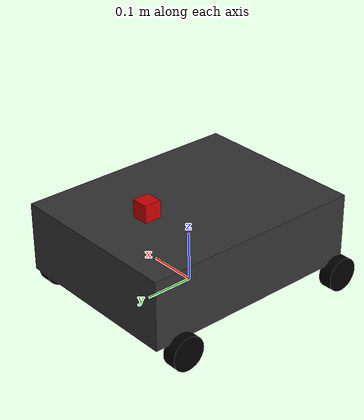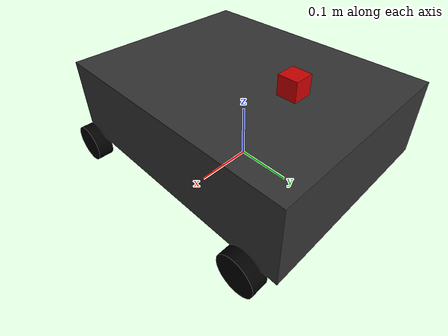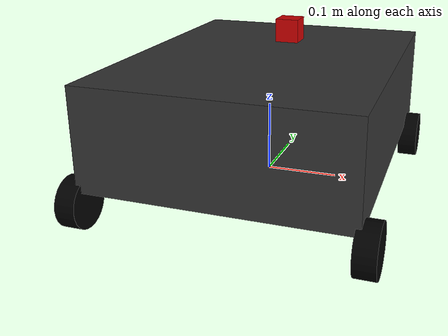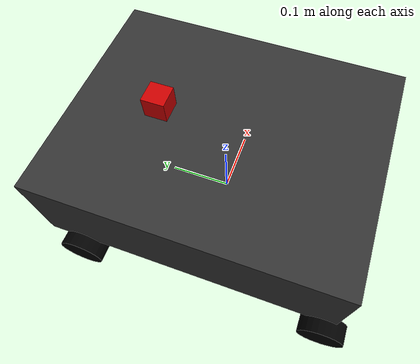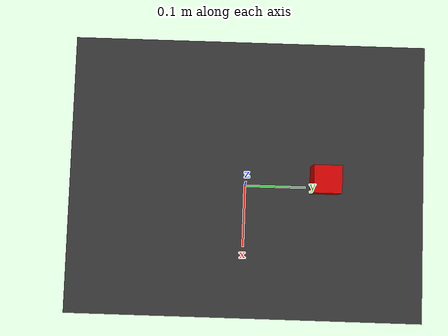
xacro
<?xml version="1.0"?>
<robot xmlns:xacro="http://www.ros.org/wiki/xacro" name="dummybot">

  <!-- Include ros2_control xacro -->
  <xacro:include filename="$(find dummybot_bringup)/description/urdf/dummybot.ros2_control.xacro"/>

  <!-- Properties -->
  <xacro:property name="use_mock_hardware" value="false"/>

  <!-- Robot dimensions -->
  <xacro:property name="wheel_radius" value="0.0345"/>
  <xacro:property name="wheel_width" value="0.028"/>
  <xacro:property name="wheelbase" value="0.374"/>            <!-- Track width (lateral X) -->
  <xacro:property name="wheel_separation" value="0.390"/>     <!-- Wheelbase (longitudinal Y) -->

  <xacro:property name="base_length" value="0.36"/>           <!-- X (scurt) -->
  <xacro:property name="base_width" value="0.46"/>            <!-- Y (lung) -->
  <xacro:property name="base_height" value="0.14"/>

  <!-- Ground clearance: centru roată la 1.45cm + 2cm la bază = 3.45cm -->
  <xacro:property name="ground_clearance" value="0.0345"/>
  <xacro:property name="wheel_z_offset" value="-0.02"/>

  <!-- Poziții roți pe Y (față-spate) -->
  <xacro:property name="front_wheel_y_offset" value="0.175"/>   <!-- Față (pozitiv) ✅ INVERSAT -->
  <xacro:property name="rear_wheel_y_offset" value="-0.215"/>   <!-- Spate (negativ) ✅ INVERSAT -->

  <!-- Serial configuration -->
  <xacro:property name="serial_port" value="/dev/ttyESP32"/>
  <xacro:property name="serial_baud" value="115200"/>
  <xacro:property name="ticks_per_revolution" value="1760"/>

  <!-- Materials -->
  <material name="black">
    <color rgba="0.0 0.0 0.0 1.0"/>
  </material>

  <material name="dark_grey">
    <color rgba="0.2 0.2 0.2 1.0"/>
  </material>

  <material name="red">
    <color rgba="0.8 0.0 0.0 1.0"/>
  </material>

  <!-- Base Footprint (pe sol) -->
  <link name="base_footprint"/>

  <joint name="base_footprint_joint" type="fixed">
    <parent link="base_footprint"/>
    <child link="base_link"/>
    <!-- Baza chassis la 3.45cm deasupra solului ✅ -->
    <origin xyz="0 0 ${ground_clearance}" rpy="0 0 0"/>
  </joint>

  <!-- Base Link (FĂRĂ offset pe visual acum, origin e la bază) -->
  <link name="base_link">
    <visual>
      <!-- Origin la bază (jos), geometry crește în sus ✅ -->
      <origin xyz="0 0 ${base_height/2}" rpy="0 0 0"/>
      <geometry>
        <box size="${base_length} ${base_width} ${base_height}"/>
      </geometry>
      <material name="dark_grey"/>
    </visual>
    <collision>
      <origin xyz="0 0 ${base_height/2}" rpy="0 0 0"/>
      <geometry>
        <box size="${base_length} ${base_width} ${base_height}"/>
      </geometry>
    </collision>
    <inertial>
      <origin xyz="0 0 ${base_height/2}" rpy="0 0 0"/>
      <mass value="5.0"/>
      <inertia ixx="0.0833" ixy="0.0" ixz="0.0"
               iyy="0.1042" iyz="0.0"
               izz="0.1667"/>
    </inertial>
  </link>

  <!-- Wheel Macro cu ROTAȚIE 90° pe Z ✅ -->
  <xacro:macro name="wheel" params="prefix x y">

    <link name="${prefix}_wheel_link">
      <visual>
        <!-- Rotație: 90° pe Z pentru axa X să fie axa de rotație ✅ -->
        <origin xyz="0 0 0" rpy="0 ${pi/2} 0"/>
        <geometry>
          <cylinder radius="${wheel_radius}" length="${wheel_width}"/>
        </geometry>
        <material name="black"/>
      </visual>
      <collision>
        <origin xyz="0 0 0" rpy="0 ${pi/2} 0"/>
        <geometry>
          <cylinder radius="${wheel_radius}" length="${wheel_width}"/>
        </geometry>
      </collision>
      <inertial>
        <origin xyz="0 0 0" rpy="0 0 0"/>
        <mass value="0.5"/>
        <inertia ixx="0.0001" ixy="0.0" ixz="0.0"
                 iyy="0.0001" iyz="0.0"
                 izz="0.0001"/>
      </inertial>
    </link>

    <joint name="${prefix}_wheel_joint" type="continuous">
      <parent link="base_link"/>
      <child link="${prefix}_wheel_link"/>
      <origin xyz="${x} ${y} ${wheel_z_offset}" rpy="0 0 0"/>
      <!-- Axa de rotație: Y pentru roți pe X-axis ✅ -->
      <axis xyz="1 0 0"/>
    </joint>

  </xacro:macro>

  <!-- Instantiate 4 wheels - FAȚĂ = +Y (pozitiv) ✅ -->
  <xacro:wheel prefix="front_left"  x="${wheelbase/2}"   y="${front_wheel_y_offset}"/>
  <xacro:wheel prefix="front_right" x="${-wheelbase/2}"  y="${front_wheel_y_offset}"/>
  <xacro:wheel prefix="rear_left"   x="${wheelbase/2}"   y="${rear_wheel_y_offset}"/>
  <xacro:wheel prefix="rear_right"  x="${-wheelbase/2}"  y="${rear_wheel_y_offset}"/>

  <!-- LiDAR - FAȚĂ = +Y (pozitiv) ✅ -->
  <link name="laser_frame">
    <visual>
      <origin xyz="0 0 0" rpy="0 0 0"/>
      <geometry>
        <box size="0.035 0.035 0.035"/>
      </geometry>
      <material name="red"/>
    </visual>
    <collision>
      <origin xyz="0 0 0" rpy="0 0 0"/>
      <geometry>
        <box size="0.035 0.035 0.035"/>
      </geometry>
    </collision>
    <inertial>
      <mass value="0.15"/>
      <inertia ixx="0.0001" ixy="0.0" ixz="0.0"
               iyy="0.0001" iyz="0.0"
               izz="0.0001"/>
    </inertial>
  </link>

  <joint name="laser_joint" type="fixed">
    <parent link="base_link"/>
    <child link="laser_frame"/>
    <!-- LiDAR în FAȚĂ: Y pozitiv = +0.10m ✅ INVERSAT -->
    <origin xyz="0 0.10 ${base_height + 0.0175}" rpy="0 0 0"/>
  </joint>

  <!-- Include ros2_control -->
  <xacro:dummybot_ros2_control
    name="DummyBotSystem"
    serial_port="${serial_port}"
    serial_baud="${serial_baud}"
    wheel_radius="${wheel_radius}"
    wheel_separation="${wheel_separation}"
    ticks_per_revolution="${ticks_per_revolution}"/>

</robot>
